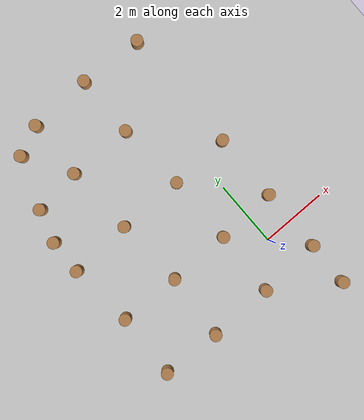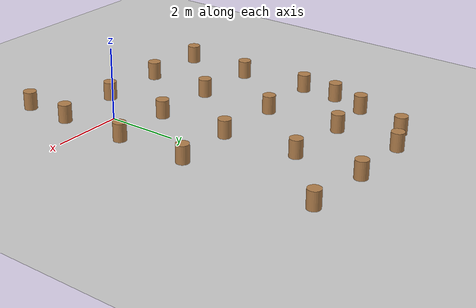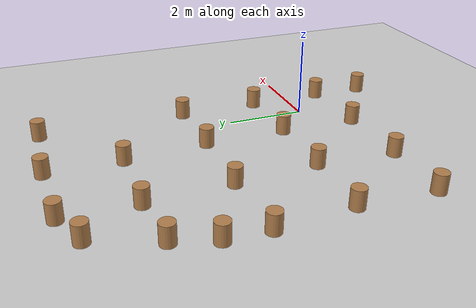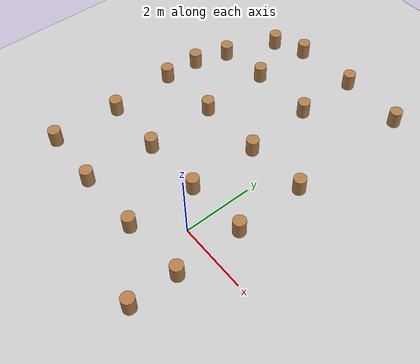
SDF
<sdf version="1.7">
 <world name="default">
  <model name="ground_plane">
   <static>1</static>
   <link name="link">
    <collision name="collision">
     <geometry><plane><normal>0 0 1</normal><size>100 100</size></plane></geometry>
     <surface>
      <contact><collide_bitmask>65535</collide_bitmask></contact>
      <friction><ode><mu>100</mu><mu2>50</mu2></ode></friction>
     </surface>
    </collision>
    <visual name="visual">
     <cast_shadows>0</cast_shadows>
     <geometry><plane><normal>0 0 1</normal><size>100 100</size></plane></geometry>
     <material>
      <script><uri>file://media/materials/scripts/gazebo.material</uri><name>Gazebo/Grey</name></script>
     </material>
    </visual>
   </link>
  </model>
  <model name="wooden_block_clone_3">
   <link name="link_0">
    <inertial>
     <mass>145.751</mass>
     <inertia><ixx>13.3534</ixx><ixy>0</ixy><ixz>0</ixz><iyy>13.3534</iyy><iyz>0</iyz><izz>2.41499</izz></inertia>
    </inertial>
    <visual name="visual">
     <geometry><cylinder><radius>0.18204</radius><length>1</length></cylinder></geometry>
     <material>
      <lighting>1</lighting>
      <script><uri>file://media/materials/scripts/gazebo.material</uri><name>Gazebo/Wood</name></script>
      <shader type="pixel"><normal_map>__default__</normal_map></shader>
      <ambient>0.3 0.3 0.3 1</ambient>
      <diffuse>0.7 0.7 0.7 1</diffuse>
      <specular>0.01 0.01 0.01 1</specular>
      <emissive>0 0 0 1</emissive>
     </material>
    </visual>
    <collision name="collision">
     <geometry><cylinder><radius>0.18204</radius><length>1</length></cylinder></geometry>
     <surface>
      <friction>
       <ode><mu>1</mu><mu2>1</mu2><fdir1>0 0 0</fdir1><slip1>0</slip1><slip2>0</slip2></ode>
       <torsional>
        <coefficient>1</coefficient>
        <patch_radius>0</patch_radius>
        <surface_radius>0</surface_radius>
        <use_patch_radius>1</use_patch_radius>
        <ode><slip>0</slip></ode>
       </torsional>
      </friction>
      <bounce><restitution_coefficient>0</restitution_coefficient><threshold>1e+06</threshold></bounce>
      <contact>
       <collide_without_contact>0</collide_without_contact>
       <collide_without_contact_bitmask>1</collide_without_contact_bitmask>
       <collide_bitmask>1</collide_bitmask>
       <ode>
        <soft_cfm>0</soft_cfm>
        <soft_erp>0.2</soft_erp>
        <kp>1e+13</kp>
        <kd>1</kd>
        <max_vel>0.01</max_vel>
        <min_depth>0</min_depth>
       </ode>
       <bullet>
        <split_impulse>1</split_impulse>
        <split_impulse_penetration_threshold>-0.01</split_impulse_penetration_threshold>
        <soft_cfm>0</soft_cfm>
        <soft_erp>0.2</soft_erp>
        <kp>1e+13</kp>
        <kd>1</kd>
       </bullet>
      </contact>
     </surface>
    </collision>
   </link>
   <static>1</static>
   <pose>-0.943173 0.922976 0 0 -0 0</pose>
  </model>
  <model name="wooden_block_clone_3_clone">
   <link name="link_0">
    <inertial>
     <mass>145.751</mass>
     <inertia><ixx>13.3534</ixx><ixy>0</ixy><ixz>0</ixz><iyy>13.3534</iyy><iyz>0</iyz><izz>2.41499</izz></inertia>
    </inertial>
    <visual name="visual">
     <geometry><cylinder><radius>0.18204</radius><length>1</length></cylinder></geometry>
     <material>
      <lighting>1</lighting>
      <script><uri>file://media/materials/scripts/gazebo.material</uri><name>Gazebo/Wood</name></script>
      <shader type="pixel"><normal_map>__default__</normal_map></shader>
      <ambient>0.3 0.3 0.3 1</ambient>
      <diffuse>0.7 0.7 0.7 1</diffuse>
      <specular>0.01 0.01 0.01 1</specular>
      <emissive>0 0 0 1</emissive>
     </material>
    </visual>
    <collision name="collision">
     <geometry><cylinder><radius>0.18204</radius><length>1</length></cylinder></geometry>
     <surface>
      <friction>
       <ode><mu>1</mu><mu2>1</mu2><fdir1>0 0 0</fdir1><slip1>0</slip1><slip2>0</slip2></ode>
       <torsional>
        <coefficient>1</coefficient>
        <patch_radius>0</patch_radius>
        <surface_radius>0</surface_radius>
        <use_patch_radius>1</use_patch_radius>
        <ode><slip>0</slip></ode>
       </torsional>
      </friction>
      <bounce><restitution_coefficient>0</restitution_coefficient><threshold>1e+06</threshold></bounce>
      <contact>
       <collide_without_contact>0</collide_without_contact>
       <collide_without_contact_bitmask>1</collide_without_contact_bitmask>
       <collide_bitmask>1</collide_bitmask>
       <ode>
        <soft_cfm>0</soft_cfm>
        <soft_erp>0.2</soft_erp>
        <kp>1e+13</kp>
        <kd>1</kd>
        <max_vel>0.01</max_vel>
        <min_depth>0</min_depth>
       </ode>
       <bullet>
        <split_impulse>1</split_impulse>
        <split_impulse_penetration_threshold>-0.01</split_impulse_penetration_threshold>
        <soft_cfm>0</soft_cfm>
        <soft_erp>0.2</soft_erp>
        <kp>1e+13</kp>
        <kd>1</kd>
       </bullet>
      </contact>
     </surface>
    </collision>
   </link>
   <static>1</static>
   <pose>-2.80567 0.918212 0 0 -0 0</pose>
  </model>
  <model name="wooden_block_clone_3_clone_0">
   <link name="link_0">
    <inertial>
     <mass>145.751</mass>
     <inertia><ixx>13.3534</ixx><ixy>0</ixy><ixz>0</ixz><iyy>13.3534</iyy><iyz>0</iyz><izz>2.41499</izz></inertia>
    </inertial>
    <visual name="visual">
     <geometry><cylinder><radius>0.18204</radius><length>1</length></cylinder></geometry>
     <material>
      <lighting>1</lighting>
      <script><uri>file://media/materials/scripts/gazebo.material</uri><name>Gazebo/Wood</name></script>
      <shader type="pixel"><normal_map>__default__</normal_map></shader>
      <ambient>0.3 0.3 0.3 1</ambient>
      <diffuse>0.7 0.7 0.7 1</diffuse>
      <specular>0.01 0.01 0.01 1</specular>
      <emissive>0 0 0 1</emissive>
     </material>
    </visual>
    <collision name="collision">
     <geometry><cylinder><radius>0.18204</radius><length>1</length></cylinder></geometry>
     <surface>
      <friction>
       <ode><mu>1</mu><mu2>1</mu2><fdir1>0 0 0</fdir1><slip1>0</slip1><slip2>0</slip2></ode>
       <torsional>
        <coefficient>1</coefficient>
        <patch_radius>0</patch_radius>
        <surface_radius>0</surface_radius>
        <use_patch_radius>1</use_patch_radius>
        <ode><slip>0</slip></ode>
       </torsional>
      </friction>
      <bounce><restitution_coefficient>0</restitution_coefficient><threshold>1e+06</threshold></bounce>
      <contact>
       <collide_without_contact>0</collide_without_contact>
       <collide_without_contact_bitmask>1</collide_without_contact_bitmask>
       <collide_bitmask>1</collide_bitmask>
       <ode>
        <soft_cfm>0</soft_cfm>
        <soft_erp>0.2</soft_erp>
        <kp>1e+13</kp>
        <kd>1</kd>
        <max_vel>0.01</max_vel>
        <min_depth>0</min_depth>
       </ode>
       <bullet>
        <split_impulse>1</split_impulse>
        <split_impulse_penetration_threshold>-0.01</split_impulse_penetration_threshold>
        <soft_cfm>0</soft_cfm>
        <soft_erp>0.2</soft_erp>
        <kp>1e+13</kp>
        <kd>1</kd>
       </bullet>
      </contact>
     </surface>
    </collision>
   </link>
   <static>1</static>
   <pose>-4.64429 0.967972 0 0 -0 0</pose>
  </model>
  <model name="wooden_block_clone_3_clone_1">
   <link name="link_0">
    <inertial>
     <mass>145.751</mass>
     <inertia><ixx>13.3534</ixx><ixy>0</ixy><ixz>0</ixz><iyy>13.3534</iyy><iyz>0</iyz><izz>2.41499</izz></inertia>
    </inertial>
    <visual name="visual">
     <geometry><cylinder><radius>0.18204</radius><length>1</length></cylinder></geometry>
     <material>
      <lighting>1</lighting>
      <script><uri>file://media/materials/scripts/gazebo.material</uri><name>Gazebo/Wood</name></script>
      <shader type="pixel"><normal_map>__default__</normal_map></shader>
      <ambient>0.3 0.3 0.3 1</ambient>
      <diffuse>0.7 0.7 0.7 1</diffuse>
      <specular>0.01 0.01 0.01 1</specular>
      <emissive>0 0 0 1</emissive>
     </material>
    </visual>
    <collision name="collision">
     <geometry><cylinder><radius>0.18204</radius><length>1</length></cylinder></geometry>
     <surface>
      <friction>
       <ode><mu>1</mu><mu2>1</mu2><fdir1>0 0 0</fdir1><slip1>0</slip1><slip2>0</slip2></ode>
       <torsional>
        <coefficient>1</coefficient>
        <patch_radius>0</patch_radius>
        <surface_radius>0</surface_radius>
        <use_patch_radius>1</use_patch_radius>
        <ode><slip>0</slip></ode>
       </torsional>
      </friction>
      <bounce><restitution_coefficient>0</restitution_coefficient><threshold>1e+06</threshold></bounce>
      <contact>
       <collide_without_contact>0</collide_without_contact>
       <collide_without_contact_bitmask>1</collide_without_contact_bitmask>
       <collide_bitmask>1</collide_bitmask>
       <ode>
        <soft_cfm>0</soft_cfm>
        <soft_erp>0.2</soft_erp>
        <kp>1e+13</kp>
        <kd>1</kd>
        <max_vel>0.01</max_vel>
        <min_depth>0</min_depth>
       </ode>
       <bullet>
        <split_impulse>1</split_impulse>
        <split_impulse_penetration_threshold>-0.01</split_impulse_penetration_threshold>
        <soft_cfm>0</soft_cfm>
        <soft_erp>0.2</soft_erp>
        <kp>1e+13</kp>
        <kd>1</kd>
       </bullet>
      </contact>
     </surface>
    </collision>
   </link>
   <static>1</static>
   <pose>0.854333 1.00114 0 0 -0 0</pose>
  </model>
  <model name="wooden_block_clone_3_clone_2">
   <link name="link_0">
    <inertial>
     <mass>145.751</mass>
     <inertia><ixx>13.3534</ixx><ixy>0</ixy><ixz>0</ixz><iyy>13.3534</iyy><iyz>0</iyz><izz>2.41499</izz></inertia>
    </inertial>
    <visual name="visual">
     <geometry><cylinder><radius>0.18204</radius><length>1</length></cylinder></geometry>
     <material>
      <lighting>1</lighting>
      <script><uri>file://media/materials/scripts/gazebo.material</uri><name>Gazebo/Wood</name></script>
      <shader type="pixel"><normal_map>__default__</normal_map></shader>
      <ambient>0.3 0.3 0.3 1</ambient>
      <diffuse>0.7 0.7 0.7 1</diffuse>
      <specular>0.01 0.01 0.01 1</specular>
      <emissive>0 0 0 1</emissive>
     </material>
    </visual>
    <collision name="collision">
     <geometry><cylinder><radius>0.18204</radius><length>1</length></cylinder></geometry>
     <surface>
      <friction>
       <ode><mu>1</mu><mu2>1</mu2><fdir1>0 0 0</fdir1><slip1>0</slip1><slip2>0</slip2></ode>
       <torsional>
        <coefficient>1</coefficient>
        <patch_radius>0</patch_radius>
        <surface_radius>0</surface_radius>
        <use_patch_radius>1</use_patch_radius>
        <ode><slip>0</slip></ode>
       </torsional>
      </friction>
      <bounce><restitution_coefficient>0</restitution_coefficient><threshold>1e+06</threshold></bounce>
      <contact>
       <collide_without_contact>0</collide_without_contact>
       <collide_without_contact_bitmask>1</collide_without_contact_bitmask>
       <collide_bitmask>1</collide_bitmask>
       <ode>
        <soft_cfm>0</soft_cfm>
        <soft_erp>0.2</soft_erp>
        <kp>1e+13</kp>
        <kd>1</kd>
        <max_vel>0.01</max_vel>
        <min_depth>0</min_depth>
       </ode>
       <bullet>
        <split_impulse>1</split_impulse>
        <split_impulse_penetration_threshold>-0.01</split_impulse_penetration_threshold>
        <soft_cfm>0</soft_cfm>
        <soft_erp>0.2</soft_erp>
        <kp>1e+13</kp>
        <kd>1</kd>
       </bullet>
      </contact>
     </surface>
    </collision>
   </link>
   <static>1</static>
   <pose>0.865969 -0.949309 0 0 -0 0</pose>
  </model>
  <model name="wooden_block_clone_3_clone_10">
   <link name="link_0">
    <inertial>
     <mass>145.751</mass>
     <inertia><ixx>13.3534</ixx><ixy>0</ixy><ixz>0</ixz><iyy>13.3534</iyy><iyz>0</iyz><izz>2.41499</izz></inertia>
    </inertial>
    <visual name="visual">
     <geometry><cylinder><radius>0.18204</radius><length>1</length></cylinder></geometry>
     <material>
      <lighting>1</lighting>
      <script><uri>file://media/materials/scripts/gazebo.material</uri><name>Gazebo/Wood</name></script>
      <shader type="pixel"><normal_map>__default__</normal_map></shader>
      <ambient>0.3 0.3 0.3 1</ambient>
      <diffuse>0.7 0.7 0.7 1</diffuse>
      <specular>0.01 0.01 0.01 1</specular>
      <emissive>0 0 0 1</emissive>
     </material>
    </visual>
    <collision name="collision">
     <geometry><cylinder><radius>0.18204</radius><length>1</length></cylinder></geometry>
     <surface>
      <friction>
       <ode><mu>1</mu><mu2>1</mu2><fdir1>0 0 0</fdir1><slip1>0</slip1><slip2>0</slip2></ode>
       <torsional>
        <coefficient>1</coefficient>
        <patch_radius>0</patch_radius>
        <surface_radius>0</surface_radius>
        <use_patch_radius>1</use_patch_radius>
        <ode><slip>0</slip></ode>
       </torsional>
      </friction>
      <bounce><restitution_coefficient>0</restitution_coefficient><threshold>1e+06</threshold></bounce>
      <contact>
       <collide_without_contact>0</collide_without_contact>
       <collide_without_contact_bitmask>1</collide_without_contact_bitmask>
       <collide_bitmask>1</collide_bitmask>
       <ode>
        <soft_cfm>0</soft_cfm>
        <soft_erp>0.2</soft_erp>
        <kp>1e+13</kp>
        <kd>1</kd>
        <max_vel>0.01</max_vel>
        <min_depth>0</min_depth>
       </ode>
       <bullet>
        <split_impulse>1</split_impulse>
        <split_impulse_penetration_threshold>-0.01</split_impulse_penetration_threshold>
        <soft_cfm>0</soft_cfm>
        <soft_erp>0.2</soft_erp>
        <kp>1e+13</kp>
        <kd>1</kd>
       </bullet>
      </contact>
     </surface>
    </collision>
   </link>
   <static>1</static>
   <pose>-1.01067 -1.04903 0 0 -0 0</pose>
  </model>
  <model name="wooden_block_clone_3_clone_11">
   <link name="link_0">
    <inertial>
     <mass>145.751</mass>
     <inertia><ixx>13.3534</ixx><ixy>0</ixy><ixz>0</ixz><iyy>13.3534</iyy><iyz>0</iyz><izz>2.41499</izz></inertia>
    </inertial>
    <visual name="visual">
     <geometry><cylinder><radius>0.18204</radius><length>1</length></cylinder></geometry>
     <material>
      <lighting>1</lighting>
      <script><uri>file://media/materials/scripts/gazebo.material</uri><name>Gazebo/Wood</name></script>
      <shader type="pixel"><normal_map>__default__</normal_map></shader>
      <ambient>0.3 0.3 0.3 1</ambient>
      <diffuse>0.7 0.7 0.7 1</diffuse>
      <specular>0.01 0.01 0.01 1</specular>
      <emissive>0 0 0 1</emissive>
     </material>
    </visual>
    <collision name="collision">
     <geometry><cylinder><radius>0.18204</radius><length>1</length></cylinder></geometry>
     <surface>
      <friction>
       <ode><mu>1</mu><mu2>1</mu2><fdir1>0 0 0</fdir1><slip1>0</slip1><slip2>0</slip2></ode>
       <torsional>
        <coefficient>1</coefficient>
        <patch_radius>0</patch_radius>
        <surface_radius>0</surface_radius>
        <use_patch_radius>1</use_patch_radius>
        <ode><slip>0</slip></ode>
       </torsional>
      </friction>
      <bounce><restitution_coefficient>0</restitution_coefficient><threshold>1e+06</threshold></bounce>
      <contact>
       <collide_without_contact>0</collide_without_contact>
       <collide_without_contact_bitmask>1</collide_without_contact_bitmask>
       <collide_bitmask>1</collide_bitmask>
       <ode>
        <soft_cfm>0</soft_cfm>
        <soft_erp>0.2</soft_erp>
        <kp>1e+13</kp>
        <kd>1</kd>
        <max_vel>0.01</max_vel>
        <min_depth>0</min_depth>
       </ode>
       <bullet>
        <split_impulse>1</split_impulse>
        <split_impulse_penetration_threshold>-0.01</split_impulse_penetration_threshold>
        <soft_cfm>0</soft_cfm>
        <soft_erp>0.2</soft_erp>
        <kp>1e+13</kp>
        <kd>1</kd>
       </bullet>
      </contact>
     </surface>
    </collision>
   </link>
   <static>1</static>
   <pose>-2.94864 -1.07437 0 0 -0 0</pose>
  </model>
  <model name="wooden_block_clone_3_clone_12">
   <link name="link_0">
    <inertial>
     <mass>145.751</mass>
     <inertia><ixx>13.3534</ixx><ixy>0</ixy><ixz>0</ixz><iyy>13.3534</iyy><iyz>0</iyz><izz>2.41499</izz></inertia>
    </inertial>
    <visual name="visual">
     <geometry><cylinder><radius>0.18204</radius><length>1</length></cylinder></geometry>
     <material>
      <lighting>1</lighting>
      <script><uri>file://media/materials/scripts/gazebo.material</uri><name>Gazebo/Wood</name></script>
      <shader type="pixel"><normal_map>__default__</normal_map></shader>
      <ambient>0.3 0.3 0.3 1</ambient>
      <diffuse>0.7 0.7 0.7 1</diffuse>
      <specular>0.01 0.01 0.01 1</specular>
      <emissive>0 0 0 1</emissive>
     </material>
    </visual>
    <collision name="collision">
     <geometry><cylinder><radius>0.18204</radius><length>1</length></cylinder></geometry>
     <surface>
      <friction>
       <ode><mu>1</mu><mu2>1</mu2><fdir1>0 0 0</fdir1><slip1>0</slip1><slip2>0</slip2></ode>
       <torsional>
        <coefficient>1</coefficient>
        <patch_radius>0</patch_radius>
        <surface_radius>0</surface_radius>
        <use_patch_radius>1</use_patch_radius>
        <ode><slip>0</slip></ode>
       </torsional>
      </friction>
      <bounce><restitution_coefficient>0</restitution_coefficient><threshold>1e+06</threshold></bounce>
      <contact>
       <collide_without_contact>0</collide_without_contact>
       <collide_without_contact_bitmask>1</collide_without_contact_bitmask>
       <collide_bitmask>1</collide_bitmask>
       <ode>
        <soft_cfm>0</soft_cfm>
        <soft_erp>0.2</soft_erp>
        <kp>1e+13</kp>
        <kd>1</kd>
        <max_vel>0.01</max_vel>
        <min_depth>0</min_depth>
       </ode>
       <bullet>
        <split_impulse>1</split_impulse>
        <split_impulse_penetration_threshold>-0.01</split_impulse_penetration_threshold>
        <soft_cfm>0</soft_cfm>
        <soft_erp>0.2</soft_erp>
        <kp>1e+13</kp>
        <kd>1</kd>
       </bullet>
      </contact>
     </surface>
    </collision>
   </link>
   <static>1</static>
   <pose>-4.72892 -1.00213 0 0 -0 0</pose>
  </model>
  <model name="wooden_block_clone_3_clone_13">
   <link name="link_0">
    <inertial>
     <mass>145.751</mass>
     <inertia><ixx>13.3534</ixx><ixy>0</ixy><ixz>0</ixz><iyy>13.3534</iyy><iyz>0</iyz><izz>2.41499</izz></inertia>
    </inertial>
    <visual name="visual">
     <geometry><cylinder><radius>0.18204</radius><length>1</length></cylinder></geometry>
     <material>
      <lighting>1</lighting>
      <script><uri>file://media/materials/scripts/gazebo.material</uri><name>Gazebo/Wood</name></script>
      <shader type="pixel"><normal_map>__default__</normal_map></shader>
      <ambient>0.3 0.3 0.3 1</ambient>
      <diffuse>0.7 0.7 0.7 1</diffuse>
      <specular>0.01 0.01 0.01 1</specular>
      <emissive>0 0 0 1</emissive>
     </material>
    </visual>
    <collision name="collision">
     <geometry><cylinder><radius>0.18204</radius><length>1</length></cylinder></geometry>
     <surface>
      <friction>
       <ode><mu>1</mu><mu2>1</mu2><fdir1>0 0 0</fdir1><slip1>0</slip1><slip2>0</slip2></ode>
       <torsional>
        <coefficient>1</coefficient>
        <patch_radius>0</patch_radius>
        <surface_radius>0</surface_radius>
        <use_patch_radius>1</use_patch_radius>
        <ode><slip>0</slip></ode>
       </torsional>
      </friction>
      <bounce><restitution_coefficient>0</restitution_coefficient><threshold>1e+06</threshold></bounce>
      <contact>
       <collide_without_contact>0</collide_without_contact>
       <collide_without_contact_bitmask>1</collide_without_contact_bitmask>
       <collide_bitmask>1</collide_bitmask>
       <ode>
        <soft_cfm>0</soft_cfm>
        <soft_erp>0.2</soft_erp>
        <kp>1e+13</kp>
        <kd>1</kd>
        <max_vel>0.01</max_vel>
        <min_depth>0</min_depth>
       </ode>
       <bullet>
        <split_impulse>1</split_impulse>
        <split_impulse_penetration_threshold>-0.01</split_impulse_penetration_threshold>
        <soft_cfm>0</soft_cfm>
        <soft_erp>0.2</soft_erp>
        <kp>1e+13</kp>
        <kd>1</kd>
       </bullet>
      </contact>
     </surface>
    </collision>
   </link>
   <static>1</static>
   <pose>-4.80726 2.93861 0 0 -0 0</pose>
  </model>
  <model name="wooden_block_clone_3_clone_14">
   <link name="link_0">
    <inertial>
     <mass>145.751</mass>
     <inertia><ixx>13.3534</ixx><ixy>0</ixy><ixz>0</ixz><iyy>13.3534</iyy><iyz>0</iyz><izz>2.41499</izz></inertia>
    </inertial>
    <visual name="visual">
     <geometry><cylinder><radius>0.18204</radius><length>1</length></cylinder></geometry>
     <material>
      <lighting>1</lighting>
      <script><uri>file://media/materials/scripts/gazebo.material</uri><name>Gazebo/Wood</name></script>
      <shader type="pixel"><normal_map>__default__</normal_map></shader>
      <ambient>0.3 0.3 0.3 1</ambient>
      <diffuse>0.7 0.7 0.7 1</diffuse>
      <specular>0.01 0.01 0.01 1</specular>
      <emissive>0 0 0 1</emissive>
     </material>
    </visual>
    <collision name="collision">
     <geometry><cylinder><radius>0.18204</radius><length>1</length></cylinder></geometry>
     <surface>
      <friction>
       <ode><mu>1</mu><mu2>1</mu2><fdir1>0 0 0</fdir1><slip1>0</slip1><slip2>0</slip2></ode>
       <torsional>
        <coefficient>1</coefficient>
        <patch_radius>0</patch_radius>
        <surface_radius>0</surface_radius>
        <use_patch_radius>1</use_patch_radius>
        <ode><slip>0</slip></ode>
       </torsional>
      </friction>
      <bounce><restitution_coefficient>0</restitution_coefficient><threshold>1e+06</threshold></bounce>
      <contact>
       <collide_without_contact>0</collide_without_contact>
       <collide_without_contact_bitmask>1</collide_without_contact_bitmask>
       <collide_bitmask>1</collide_bitmask>
       <ode>
        <soft_cfm>0</soft_cfm>
        <soft_erp>0.2</soft_erp>
        <kp>1e+13</kp>
        <kd>1</kd>
        <max_vel>0.01</max_vel>
        <min_depth>0</min_depth>
       </ode>
       <bullet>
        <split_impulse>1</split_impulse>
        <split_impulse_penetration_threshold>-0.01</split_impulse_penetration_threshold>
        <soft_cfm>0</soft_cfm>
        <soft_erp>0.2</soft_erp>
        <kp>1e+13</kp>
        <kd>1</kd>
       </bullet>
      </contact>
     </surface>
    </collision>
   </link>
   <static>1</static>
   <pose>-2.92813 3.02226 0 0 -0 0</pose>
  </model>
  <model name="wooden_block_clone_3_clone_15">
   <link name="link_0">
    <inertial>
     <mass>145.751</mass>
     <inertia><ixx>13.3534</ixx><ixy>0</ixy><ixz>0</ixz><iyy>13.3534</iyy><iyz>0</iyz><izz>2.41499</izz></inertia>
    </inertial>
    <visual name="visual">
     <geometry><cylinder><radius>0.18204</radius><length>1</length></cylinder></geometry>
     <material>
      <lighting>1</lighting>
      <script><uri>file://media/materials/scripts/gazebo.material</uri><name>Gazebo/Wood</name></script>
      <shader type="pixel"><normal_map>__default__</normal_map></shader>
      <ambient>0.3 0.3 0.3 1</ambient>
      <diffuse>0.7 0.7 0.7 1</diffuse>
      <specular>0.01 0.01 0.01 1</specular>
      <emissive>0 0 0 1</emissive>
     </material>
    </visual>
    <collision name="collision">
     <geometry><cylinder><radius>0.18204</radius><length>1</length></cylinder></geometry>
     <surface>
      <friction>
       <ode><mu>1</mu><mu2>1</mu2><fdir1>0 0 0</fdir1><slip1>0</slip1><slip2>0</slip2></ode>
       <torsional>
        <coefficient>1</coefficient>
        <patch_radius>0</patch_radius>
        <surface_radius>0</surface_radius>
        <use_patch_radius>1</use_patch_radius>
        <ode><slip>0</slip></ode>
       </torsional>
      </friction>
      <bounce><restitution_coefficient>0</restitution_coefficient><threshold>1e+06</threshold></bounce>
      <contact>
       <collide_without_contact>0</collide_without_contact>
       <collide_without_contact_bitmask>1</collide_without_contact_bitmask>
       <collide_bitmask>1</collide_bitmask>
       <ode>
        <soft_cfm>0</soft_cfm>
        <soft_erp>0.2</soft_erp>
        <kp>1e+13</kp>
        <kd>1</kd>
        <max_vel>0.01</max_vel>
        <min_depth>0</min_depth>
       </ode>
       <bullet>
        <split_impulse>1</split_impulse>
        <split_impulse_penetration_threshold>-0.01</split_impulse_penetration_threshold>
        <soft_cfm>0</soft_cfm>
        <soft_erp>0.2</soft_erp>
        <kp>1e+13</kp>
        <kd>1</kd>
       </bullet>
      </contact>
     </surface>
    </collision>
   </link>
   <static>1</static>
   <pose>-0.946331 3.00394 0 0 -0 0</pose>
  </model>
  <model name="wooden_block_clone_3_clone_16">
   <link name="link_0">
    <inertial>
     <mass>145.751</mass>
     <inertia><ixx>13.3534</ixx><ixy>0</ixy><ixz>0</ixz><iyy>13.3534</iyy><iyz>0</iyz><izz>2.41499</izz></inertia>
    </inertial>
    <visual name="visual">
     <geometry><cylinder><radius>0.18204</radius><length>1</length></cylinder></geometry>
     <material>
      <lighting>1</lighting>
      <script><uri>file://media/materials/scripts/gazebo.material</uri><name>Gazebo/Wood</name></script>
      <shader type="pixel"><normal_map>__default__</normal_map></shader>
      <ambient>0.3 0.3 0.3 1</ambient>
      <diffuse>0.7 0.7 0.7 1</diffuse>
      <specular>0.01 0.01 0.01 1</specular>
      <emissive>0 0 0 1</emissive>
     </material>
    </visual>
    <collision name="collision">
     <geometry><cylinder><radius>0.18204</radius><length>1</length></cylinder></geometry>
     <surface>
      <friction>
       <ode><mu>1</mu><mu2>1</mu2><fdir1>0 0 0</fdir1><slip1>0</slip1><slip2>0</slip2></ode>
       <torsional>
        <coefficient>1</coefficient>
        <patch_radius>0</patch_radius>
        <surface_radius>0</surface_radius>
        <use_patch_radius>1</use_patch_radius>
        <ode><slip>0</slip></ode>
       </torsional>
      </friction>
      <bounce><restitution_coefficient>0</restitution_coefficient><threshold>1e+06</threshold></bounce>
      <contact>
       <collide_without_contact>0</collide_without_contact>
       <collide_without_contact_bitmask>1</collide_without_contact_bitmask>
       <collide_bitmask>1</collide_bitmask>
       <ode>
        <soft_cfm>0</soft_cfm>
        <soft_erp>0.2</soft_erp>
        <kp>1e+13</kp>
        <kd>1</kd>
        <max_vel>0.01</max_vel>
        <min_depth>0</min_depth>
       </ode>
       <bullet>
        <split_impulse>1</split_impulse>
        <split_impulse_penetration_threshold>-0.01</split_impulse_penetration_threshold>
        <soft_cfm>0</soft_cfm>
        <soft_erp>0.2</soft_erp>
        <kp>1e+13</kp>
        <kd>1</kd>
       </bullet>
      </contact>
     </surface>
    </collision>
   </link>
   <static>1</static>
   <pose>0.857104 3.07098 0 0 -0 0</pose>
  </model>
  <model name="wooden_block_clone_3_clone_23">
   <link name="link_0">
    <inertial>
     <mass>145.751</mass>
     <inertia><ixx>13.3534</ixx><ixy>0</ixy><ixz>0</ixz><iyy>13.3534</iyy><iyz>0</iyz><izz>2.41499</izz></inertia>
    </inertial>
    <visual name="visual">
     <geometry><cylinder><radius>0.18204</radius><length>1</length></cylinder></geometry>
     <material>
      <lighting>1</lighting>
      <script><uri>file://media/materials/scripts/gazebo.material</uri><name>Gazebo/Wood</name></script>
      <shader type="pixel"><normal_map>__default__</normal_map></shader>
      <ambient>0.3 0.3 0.3 1</ambient>
      <diffuse>0.7 0.7 0.7 1</diffuse>
      <specular>0.01 0.01 0.01 1</specular>
      <emissive>0 0 0 1</emissive>
     </material>
    </visual>
    <collision name="collision">
     <geometry><cylinder><radius>0.18204</radius><length>1</length></cylinder></geometry>
     <surface>
      <friction>
       <ode><mu>1</mu><mu2>1</mu2><fdir1>0 0 0</fdir1><slip1>0</slip1><slip2>0</slip2></ode>
       <torsional>
        <coefficient>1</coefficient>
        <patch_radius>0</patch_radius>
        <surface_radius>0</surface_radius>
        <use_patch_radius>1</use_patch_radius>
        <ode><slip>0</slip></ode>
       </torsional>
      </friction>
      <bounce><restitution_coefficient>0</restitution_coefficient><threshold>1e+06</threshold></bounce>
      <contact>
       <collide_without_contact>0</collide_without_contact>
       <collide_without_contact_bitmask>1</collide_without_contact_bitmask>
       <collide_bitmask>1</collide_bitmask>
       <ode>
        <soft_cfm>0</soft_cfm>
        <soft_erp>0.2</soft_erp>
        <kp>1e+13</kp>
        <kd>1</kd>
        <max_vel>0.01</max_vel>
        <min_depth>0</min_depth>
       </ode>
       <bullet>
        <split_impulse>1</split_impulse>
        <split_impulse_penetration_threshold>-0.01</split_impulse_penetration_threshold>
        <soft_cfm>0</soft_cfm>
        <soft_erp>0.2</soft_erp>
        <kp>1e+13</kp>
        <kd>1</kd>
       </bullet>
      </contact>
     </surface>
    </collision>
   </link>
   <static>1</static>
   <pose>-1.09303 5.09757 0 0 -0 0</pose>
  </model>
  <model name="wooden_block_clone_3_clone_24">
   <link name="link_0">
    <inertial>
     <mass>145.751</mass>
     <inertia><ixx>13.3534</ixx><ixy>0</ixy><ixz>0</ixz><iyy>13.3534</iyy><iyz>0</iyz><izz>2.41499</izz></inertia>
    </inertial>
    <visual name="visual">
     <geometry><cylinder><radius>0.18204</radius><length>1</length></cylinder></geometry>
     <material>
      <lighting>1</lighting>
      <script><uri>file://media/materials/scripts/gazebo.material</uri><name>Gazebo/Wood</name></script>
      <shader type="pixel"><normal_map>__default__</normal_map></shader>
      <ambient>0.3 0.3 0.3 1</ambient>
      <diffuse>0.7 0.7 0.7 1</diffuse>
      <specular>0.01 0.01 0.01 1</specular>
      <emissive>0 0 0 1</emissive>
     </material>
    </visual>
    <collision name="collision">
     <geometry><cylinder><radius>0.18204</radius><length>1</length></cylinder></geometry>
     <surface>
      <friction>
       <ode><mu>1</mu><mu2>1</mu2><fdir1>0 0 0</fdir1><slip1>0</slip1><slip2>0</slip2></ode>
       <torsional>
        <coefficient>1</coefficient>
        <patch_radius>0</patch_radius>
        <surface_radius>0</surface_radius>
        <use_patch_radius>1</use_patch_radius>
        <ode><slip>0</slip></ode>
       </torsional>
      </friction>
      <bounce><restitution_coefficient>0</restitution_coefficient><threshold>1e+06</threshold></bounce>
      <contact>
       <collide_without_contact>0</collide_without_contact>
       <collide_without_contact_bitmask>1</collide_without_contact_bitmask>
       <collide_bitmask>1</collide_bitmask>
       <ode>
        <soft_cfm>0</soft_cfm>
        <soft_erp>0.2</soft_erp>
        <kp>1e+13</kp>
        <kd>1</kd>
        <max_vel>0.01</max_vel>
        <min_depth>0</min_depth>
       </ode>
       <bullet>
        <split_impulse>1</split_impulse>
        <split_impulse_penetration_threshold>-0.01</split_impulse_penetration_threshold>
        <soft_cfm>0</soft_cfm>
        <soft_erp>0.2</soft_erp>
        <kp>1e+13</kp>
        <kd>1</kd>
       </bullet>
      </contact>
     </surface>
    </collision>
   </link>
   <static>1</static>
   <pose>-3.02303 5.13273 0 0 -0 0</pose>
  </model>
  <model name="wooden_block_clone_3_clone_25">
   <link name="link_0">
    <inertial>
     <mass>145.751</mass>
     <inertia><ixx>13.3534</ixx><ixy>0</ixy><ixz>0</ixz><iyy>13.3534</iyy><iyz>0</iyz><izz>2.41499</izz></inertia>
    </inertial>
    <visual name="visual">
     <geometry><cylinder><radius>0.18204</radius><length>1</length></cylinder></geometry>
     <material>
      <lighting>1</lighting>
      <script><uri>file://media/materials/scripts/gazebo.material</uri><name>Gazebo/Wood</name></script>
      <shader type="pixel"><normal_map>__default__</normal_map></shader>
      <ambient>0.3 0.3 0.3 1</ambient>
      <diffuse>0.7 0.7 0.7 1</diffuse>
      <specular>0.01 0.01 0.01 1</specular>
      <emissive>0 0 0 1</emissive>
     </material>
    </visual>
    <collision name="collision">
     <geometry><cylinder><radius>0.18204</radius><length>1</length></cylinder></geometry>
     <surface>
      <friction>
       <ode><mu>1</mu><mu2>1</mu2><fdir1>0 0 0</fdir1><slip1>0</slip1><slip2>0</slip2></ode>
       <torsional>
        <coefficient>1</coefficient>
        <patch_radius>0</patch_radius>
        <surface_radius>0</surface_radius>
        <use_patch_radius>1</use_patch_radius>
        <ode><slip>0</slip></ode>
       </torsional>
      </friction>
      <bounce><restitution_coefficient>0</restitution_coefficient><threshold>1e+06</threshold></bounce>
      <contact>
       <collide_without_contact>0</collide_without_contact>
       <collide_without_contact_bitmask>1</collide_without_contact_bitmask>
       <collide_bitmask>1</collide_bitmask>
       <ode>
        <soft_cfm>0</soft_cfm>
        <soft_erp>0.2</soft_erp>
        <kp>1e+13</kp>
        <kd>1</kd>
        <max_vel>0.01</max_vel>
        <min_depth>0</min_depth>
       </ode>
       <bullet>
        <split_impulse>1</split_impulse>
        <split_impulse_penetration_threshold>-0.01</split_impulse_penetration_threshold>
        <soft_cfm>0</soft_cfm>
        <soft_erp>0.2</soft_erp>
        <kp>1e+13</kp>
        <kd>1</kd>
       </bullet>
      </contact>
     </surface>
    </collision>
   </link>
   <static>1</static>
   <pose>-2.96259 6.90565 0 0 -0 0</pose>
  </model>
  <model name="wooden_block_clone_3_clone_26">
   <link name="link_0">
    <inertial>
     <mass>145.751</mass>
     <inertia><ixx>13.3534</ixx><ixy>0</ixy><ixz>0</ixz><iyy>13.3534</iyy><iyz>0</iyz><izz>2.41499</izz></inertia>
    </inertial>
    <visual name="visual">
     <geometry><cylinder><radius>0.18204</radius><length>1</length></cylinder></geometry>
     <material>
      <lighting>1</lighting>
      <script><uri>file://media/materials/scripts/gazebo.material</uri><name>Gazebo/Wood</name></script>
      <shader type="pixel"><normal_map>__default__</normal_map></shader>
      <ambient>0.3 0.3 0.3 1</ambient>
      <diffuse>0.7 0.7 0.7 1</diffuse>
      <specular>0.01 0.01 0.01 1</specular>
      <emissive>0 0 0 1</emissive>
     </material>
    </visual>
    <collision name="collision">
     <geometry><cylinder><radius>0.18204</radius><length>1</length></cylinder></geometry>
     <surface>
      <friction>
       <ode><mu>1</mu><mu2>1</mu2><fdir1>0 0 0</fdir1><slip1>0</slip1><slip2>0</slip2></ode>
       <torsional>
        <coefficient>1</coefficient>
        <patch_radius>0</patch_radius>
        <surface_radius>0</surface_radius>
        <use_patch_radius>1</use_patch_radius>
        <ode><slip>0</slip></ode>
       </torsional>
      </friction>
      <bounce><restitution_coefficient>0</restitution_coefficient><threshold>1e+06</threshold></bounce>
      <contact>
       <collide_without_contact>0</collide_without_contact>
       <collide_without_contact_bitmask>1</collide_without_contact_bitmask>
       <collide_bitmask>1</collide_bitmask>
       <ode>
        <soft_cfm>0</soft_cfm>
        <soft_erp>0.2</soft_erp>
        <kp>1e+13</kp>
        <kd>1</kd>
        <max_vel>0.01</max_vel>
        <min_depth>0</min_depth>
       </ode>
       <bullet>
        <split_impulse>1</split_impulse>
        <split_impulse_penetration_threshold>-0.01</split_impulse_penetration_threshold>
        <soft_cfm>0</soft_cfm>
        <soft_erp>0.2</soft_erp>
        <kp>1e+13</kp>
        <kd>1</kd>
       </bullet>
      </contact>
     </surface>
    </collision>
   </link>
   <static>1</static>
   <pose>-1.06842 6.96489 0 0 -0 0</pose>
  </model>
  <model name="wooden_block_clone_3_clone_27">
   <link name="link_0">
    <inertial>
     <mass>145.751</mass>
     <inertia><ixx>13.3534</ixx><ixy>0</ixy><ixz>0</ixz><iyy>13.3534</iyy><iyz>0</iyz><izz>2.41499</izz></inertia>
    </inertial>
    <visual name="visual">
     <geometry><cylinder><radius>0.18204</radius><length>1</length></cylinder></geometry>
     <material>
      <lighting>1</lighting>
      <script><uri>file://media/materials/scripts/gazebo.material</uri><name>Gazebo/Wood</name></script>
      <shader type="pixel"><normal_map>__default__</normal_map></shader>
      <ambient>0.3 0.3 0.3 1</ambient>
      <diffuse>0.7 0.7 0.7 1</diffuse>
      <specular>0.01 0.01 0.01 1</specular>
      <emissive>0 0 0 1</emissive>
     </material>
    </visual>
    <collision name="collision">
     <geometry><cylinder><radius>0.18204</radius><length>1</length></cylinder></geometry>
     <surface>
      <friction>
       <ode><mu>1</mu><mu2>1</mu2><fdir1>0 0 0</fdir1><slip1>0</slip1><slip2>0</slip2></ode>
       <torsional>
        <coefficient>1</coefficient>
        <patch_radius>0</patch_radius>
        <surface_radius>0</surface_radius>
        <use_patch_radius>1</use_patch_radius>
        <ode><slip>0</slip></ode>
       </torsional>
      </friction>
      <bounce><restitution_coefficient>0</restitution_coefficient><threshold>1e+06</threshold></bounce>
      <contact>
       <collide_without_contact>0</collide_without_contact>
       <collide_without_contact_bitmask>1</collide_without_contact_bitmask>
       <collide_bitmask>1</collide_bitmask>
       <ode>
        <soft_cfm>0</soft_cfm>
        <soft_erp>0.2</soft_erp>
        <kp>1e+13</kp>
        <kd>1</kd>
        <max_vel>0.01</max_vel>
        <min_depth>0</min_depth>
       </ode>
       <bullet>
        <split_impulse>1</split_impulse>
        <split_impulse_penetration_threshold>-0.01</split_impulse_penetration_threshold>
        <soft_cfm>0</soft_cfm>
        <soft_erp>0.2</soft_erp>
        <kp>1e+13</kp>
        <kd>1</kd>
       </bullet>
      </contact>
     </surface>
    </collision>
   </link>
   <static>1</static>
   <pose>0.850256 6.85259 0 0 -0 0</pose>
  </model>
  <model name="wooden_block_clone_3_clone_34">
   <link name="link_0">
    <inertial>
     <mass>145.751</mass>
     <inertia><ixx>13.3534</ixx><ixy>0</ixy><ixz>0</ixz><iyy>13.3534</iyy><iyz>0</iyz><izz>2.41499</izz></inertia>
    </inertial>
    <visual name="visual">
     <geometry><cylinder><radius>0.18204</radius><length>1</length></cylinder></geometry>
     <material>
      <lighting>1</lighting>
      <script><uri>file://media/materials/scripts/gazebo.material</uri><name>Gazebo/Wood</name></script>
      <shader type="pixel"><normal_map>__default__</normal_map></shader>
      <ambient>0.3 0.3 0.3 1</ambient>
      <diffuse>0.7 0.7 0.7 1</diffuse>
      <specular>0.01 0.01 0.01 1</specular>
      <emissive>0 0 0 1</emissive>
     </material>
    </visual>
    <collision name="collision">
     <geometry><cylinder><radius>0.18204</radius><length>1</length></cylinder></geometry>
     <surface>
      <friction>
       <ode><mu>1</mu><mu2>1</mu2><fdir1>0 0 0</fdir1><slip1>0</slip1><slip2>0</slip2></ode>
       <torsional>
        <coefficient>1</coefficient>
        <patch_radius>0</patch_radius>
        <surface_radius>0</surface_radius>
        <use_patch_radius>1</use_patch_radius>
        <ode><slip>0</slip></ode>
       </torsional>
      </friction>
      <bounce><restitution_coefficient>0</restitution_coefficient><threshold>1e+06</threshold></bounce>
      <contact>
       <collide_without_contact>0</collide_without_contact>
       <collide_without_contact_bitmask>1</collide_without_contact_bitmask>
       <collide_bitmask>1</collide_bitmask>
       <ode>
        <soft_cfm>0</soft_cfm>
        <soft_erp>0.2</soft_erp>
        <kp>1e+13</kp>
        <kd>1</kd>
        <max_vel>0.01</max_vel>
        <min_depth>0</min_depth>
       </ode>
       <bullet>
        <split_impulse>1</split_impulse>
        <split_impulse_penetration_threshold>-0.01</split_impulse_penetration_threshold>
        <soft_cfm>0</soft_cfm>
        <soft_erp>0.2</soft_erp>
        <kp>1e+13</kp>
        <kd>1</kd>
       </bullet>
      </contact>
     </surface>
    </collision>
   </link>
   <static>1</static>
   <pose>0.833721 -2.30812 0 0 -0 0</pose>
  </model>
  <model name="wooden_block_clone_3_clone_35">
   <link name="link_0">
    <inertial>
     <mass>145.751</mass>
     <inertia><ixx>13.3534</ixx><ixy>0</ixy><ixz>0</ixz><iyy>13.3534</iyy><iyz>0</iyz><izz>2.41499</izz></inertia>
    </inertial>
    <visual name="visual">
     <geometry><cylinder><radius>0.18204</radius><length>1</length></cylinder></geometry>
     <material>
      <lighting>1</lighting>
      <script><uri>file://media/materials/scripts/gazebo.material</uri><name>Gazebo/Wood</name></script>
      <shader type="pixel"><normal_map>__default__</normal_map></shader>
      <ambient>0.3 0.3 0.3 1</ambient>
      <diffuse>0.7 0.7 0.7 1</diffuse>
      <specular>0.01 0.01 0.01 1</specular>
      <emissive>0 0 0 1</emissive>
     </material>
    </visual>
    <collision name="collision">
     <geometry><cylinder><radius>0.18204</radius><length>1</length></cylinder></geometry>
     <surface>
      <friction>
       <ode><mu>1</mu><mu2>1</mu2><fdir1>0 0 0</fdir1><slip1>0</slip1><slip2>0</slip2></ode>
       <torsional>
        <coefficient>1</coefficient>
        <patch_radius>0</patch_radius>
        <surface_radius>0</surface_radius>
        <use_patch_radius>1</use_patch_radius>
        <ode><slip>0</slip></ode>
       </torsional>
      </friction>
      <bounce><restitution_coefficient>0</restitution_coefficient><threshold>1e+06</threshold></bounce>
      <contact>
       <collide_without_contact>0</collide_without_contact>
       <collide_without_contact_bitmask>1</collide_without_contact_bitmask>
       <collide_bitmask>1</collide_bitmask>
       <ode>
        <soft_cfm>0</soft_cfm>
        <soft_erp>0.2</soft_erp>
        <kp>1e+13</kp>
        <kd>1</kd>
        <max_vel>0.01</max_vel>
        <min_depth>0</min_depth>
       </ode>
       <bullet>
        <split_impulse>1</split_impulse>
        <split_impulse_penetration_threshold>-0.01</split_impulse_penetration_threshold>
        <soft_cfm>0</soft_cfm>
        <soft_erp>0.2</soft_erp>
        <kp>1e+13</kp>
        <kd>1</kd>
       </bullet>
      </contact>
     </surface>
    </collision>
   </link>
   <static>1</static>
   <pose>-3.86719 6.51831 0 0 -0 0</pose>
  </model>
  <model name="wooden_block_clone_3_clone_36">
   <link name="link_0">
    <inertial>
     <mass>145.751</mass>
     <inertia><ixx>13.3534</ixx><ixy>0</ixy><ixz>0</ixz><iyy>13.3534</iyy><iyz>0</iyz><izz>2.41499</izz></inertia>
    </inertial>
    <visual name="visual">
     <geometry><cylinder><radius>0.18204</radius><length>1</length></cylinder></geometry>
     <material>
      <lighting>1</lighting>
      <script><uri>file://media/materials/scripts/gazebo.material</uri><name>Gazebo/Wood</name></script>
      <shader type="pixel"><normal_map>__default__</normal_map></shader>
      <ambient>0.3 0.3 0.3 1</ambient>
      <diffuse>0.7 0.7 0.7 1</diffuse>
      <specular>0.01 0.01 0.01 1</specular>
      <emissive>0 0 0 1</emissive>
     </material>
    </visual>
    <collision name="collision">
     <geometry><cylinder><radius>0.18204</radius><length>1</length></cylinder></geometry>
     <surface>
      <friction>
       <ode><mu>1</mu><mu2>1</mu2><fdir1>0 0 0</fdir1><slip1>0</slip1><slip2>0</slip2></ode>
       <torsional>
        <coefficient>1</coefficient>
        <patch_radius>0</patch_radius>
        <surface_radius>0</surface_radius>
        <use_patch_radius>1</use_patch_radius>
        <ode><slip>0</slip></ode>
       </torsional>
      </friction>
      <bounce><restitution_coefficient>0</restitution_coefficient><threshold>1e+06</threshold></bounce>
      <contact>
       <collide_without_contact>0</collide_without_contact>
       <collide_without_contact_bitmask>1</collide_without_contact_bitmask>
       <collide_bitmask>1</collide_bitmask>
       <ode>
        <soft_cfm>0</soft_cfm>
        <soft_erp>0.2</soft_erp>
        <kp>1e+13</kp>
        <kd>1</kd>
        <max_vel>0.01</max_vel>
        <min_depth>0</min_depth>
       </ode>
       <bullet>
        <split_impulse>1</split_impulse>
        <split_impulse_penetration_threshold>-0.01</split_impulse_penetration_threshold>
        <soft_cfm>0</soft_cfm>
        <soft_erp>0.2</soft_erp>
        <kp>1e+13</kp>
        <kd>1</kd>
       </bullet>
      </contact>
     </surface>
    </collision>
   </link>
   <static>1</static>
   <pose>-4.45443 4.98441 0 0 -0 0</pose>
  </model>
  <model name="wooden_block_clone_3_clone_37">
   <link name="link_0">
    <inertial>
     <mass>145.751</mass>
     <inertia><ixx>13.3534</ixx><ixy>0</ixy><ixz>0</ixz><iyy>13.3534</iyy><iyz>0</iyz><izz>2.41499</izz></inertia>
    </inertial>
    <visual name="visual">
     <geometry><cylinder><radius>0.18204</radius><length>1</length></cylinder></geometry>
     <material>
      <lighting>1</lighting>
      <script><uri>file://media/materials/scripts/gazebo.material</uri><name>Gazebo/Wood</name></script>
      <shader type="pixel"><normal_map>__default__</normal_map></shader>
      <ambient>0.3 0.3 0.3 1</ambient>
      <diffuse>0.7 0.7 0.7 1</diffuse>
      <specular>0.01 0.01 0.01 1</specular>
      <emissive>0 0 0 1</emissive>
     </material>
    </visual>
    <collision name="collision">
     <geometry><cylinder><radius>0.18204</radius><length>1</length></cylinder></geometry>
     <surface>
      <friction>
       <ode><mu>1</mu><mu2>1</mu2><fdir1>0 0 0</fdir1><slip1>0</slip1><slip2>0</slip2></ode>
       <torsional>
        <coefficient>1</coefficient>
        <patch_radius>0</patch_radius>
        <surface_radius>0</surface_radius>
        <use_patch_radius>1</use_patch_radius>
        <ode><slip>0</slip></ode>
       </torsional>
      </friction>
      <bounce><restitution_coefficient>0</restitution_coefficient><threshold>1e+06</threshold></bounce>
      <contact>
       <collide_without_contact>0</collide_without_contact>
       <collide_without_contact_bitmask>1</collide_without_contact_bitmask>
       <collide_bitmask>1</collide_bitmask>
       <ode>
        <soft_cfm>0</soft_cfm>
        <soft_erp>0.2</soft_erp>
        <kp>1e+13</kp>
        <kd>1</kd>
        <max_vel>0.01</max_vel>
        <min_depth>0</min_depth>
       </ode>
       <bullet>
        <split_impulse>1</split_impulse>
        <split_impulse_penetration_threshold>-0.01</split_impulse_penetration_threshold>
        <soft_cfm>0</soft_cfm>
        <soft_erp>0.2</soft_erp>
        <kp>1e+13</kp>
        <kd>1</kd>
       </bullet>
      </contact>
     </surface>
    </collision>
   </link>
   <static>1</static>
   <pose>-4.77367 3.99587 0 0 -0 0</pose>
  </model>
 </world>
</sdf>
